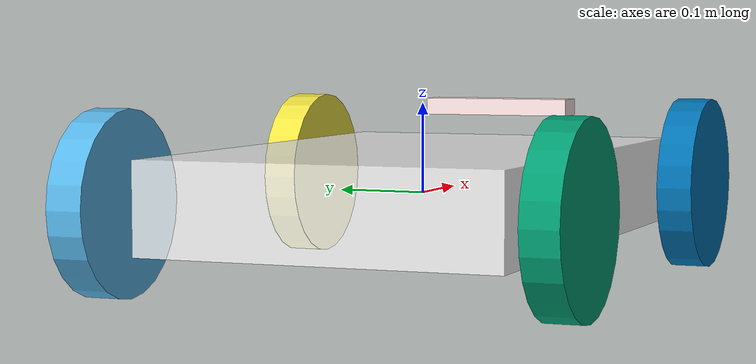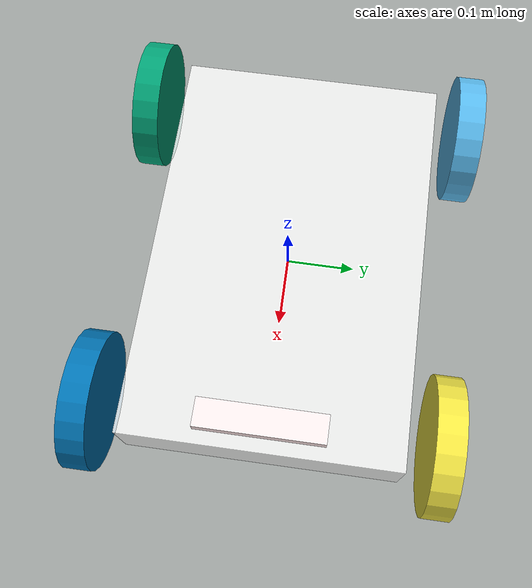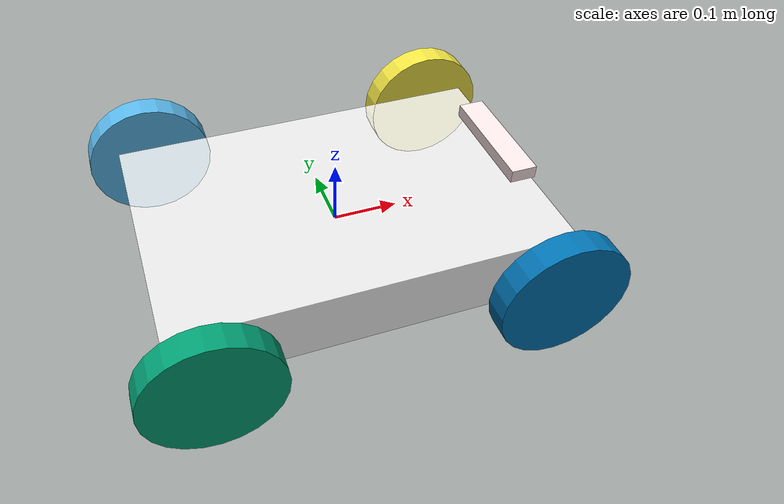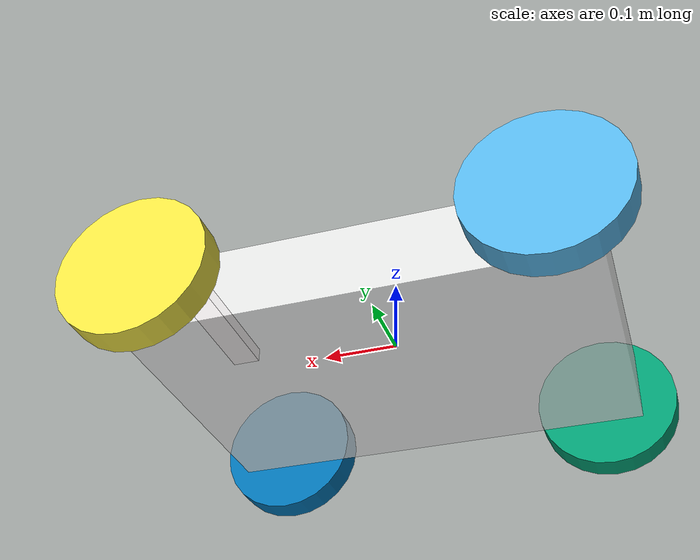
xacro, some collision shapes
<robot xmlns:xacro="http://www.ros.org/wiki/xacro"  name="mobile_robot">

 <xacro:macro name="wheel" params="name x y">
  <link name="${name}">
    <visual>
      <origin xyz="0 0 0" rpy="${pi/2} 0 0"/>
      <geometry>
        <cylinder length="0.04" radius="0.1"/>
      </geometry>
    </visual>
    <collision>
      <origin xyz="0 0 0" rpy="${pi/2} 0 0"/>
      <geometry>
         <cylinder length="0.04" radius="0.1"/>
      </geometry>
    </collision>
	<xacro:default_inertial mass="0.6"/>
  </link>
  <joint name="base_link_${name}" type="continuous">
    <origin xyz="${y*0.25} ${x*0.25} 0" rpy="0 0 0"/>
     <axis rpy="0 0 0" xyz="0 1 0"/>
    <parent link="base_link"/>
    <child link="${name}"/>
  </joint>

<gazebo reference="base_link_${name}_wheel">
  <mu1 value="200.0"/>
  <mu2 value="100.0"/>
  <kp value="10000000.0" />
  <kd value="1.0" />
  <material>Gazebo/Grey</material>
</gazebo>
<transmission name="base_link_${name}_wheel_trans">
  <type>transmission_interface/SimpleTransmission</type>
  <actuator name="base_link_${name}_wheel_motor">
    <mechanicalReduction>1</mechanicalReduction>
  </actuator>
  <joint name="base_link_${name}">
    <hardwareInterface>hardware_interface/VelocityJointInterface</hardwareInterface>
  </joint>
</transmission>
</xacro:macro>

<xacro:macro name="default_inertial" params="mass">
  <inertial>
    <mass value="${mass}" />
    <inertia ixx="1.0" ixy="0.0" ixz="0.0" iyy="1.0" iyz="0.0" izz="1.0" />
  </inertial>
</xacro:macro>

<link name="base_link">
    <visual>
      <origin xyz="0 0 0" rpy="0 0 0"/>
      <geometry>
        <box size="0.6 0.4 0.10"/>
      </geometry>
      <material name="acrylic">
        <color rgba="1 1 1 0.8"/>
      </material>
    </visual>
    <collision>
      <origin xyz="0 0 0" rpy="0 0 0"/>
      <geometry>
        <box size="0.6 0.4 0.10"/>
      </geometry>
    </collision>
	<xacro:default_inertial mass="30"/>
</link>

<xacro:wheel name="wh_left_back" x="1" y="-1"/>
<xacro:wheel name="wh_right_back" x="-1" y="-1"/>
<xacro:wheel name="wh_left_front" x="1" y="1"/>
<xacro:wheel name="wh_right_front" x="-1" y="1"/>

 <!-- =================== Kinect ==================== -->
  <link name="kinect_link">
    <visual>
      <origin xyz="-0.1 -0.045 -0.1" rpy="1.5 0 0"/>
      <geometry>
        <mesh filename="package://mobile_robot_description/meshes/HC-SR04.stl" scale="0.005 0.005  0.005"/>
      </geometry>
      <material name="kinect">
        <color rgba="1 0.9 0.9 1"/>
      </material>
    </visual>
    <collision>
      <origin xyz="0 0 0" rpy="0 0 0"/>
      <geometry>
        <box size="0.18 0.04 0.02"/>
      </geometry>
    </collision>
    <xacro:default_inertial mass="0.2"/>
  </link>

  <joint name="base_link_kinect_link" type="fixed">
    <origin xyz="0.265 0 0.087" rpy="0 0 ${pi/2}"/>
    <parent link="base_link"/>
    <child link="kinect_link"/>
  </joint>

<!-- ********************* ULTRASONIC SENSOR **********************  -->
<link name="ultrasonic_1_link">

  <xacro:default_inertial mass="0.2"/>
  <pose>0.09 -0.139 0.595 0 0 0</pose>
  <sensor name="ultrasonic_1" type="ray">
    <always_on>true</always_on>
    <visualize>false</visualize>
    <update_rate>5</update_rate>
    <ray>
      <scan>
        <horizontal>
          <samples>5</samples>
          <resolution>1.000000</resolution>
          <min_angle>-0.12</min_angle>
          <max_angle>0.12</max_angle>
        </horizontal>
        <vertical>
          <samples>5</samples>
          <resolution>1.000000</resolution>
          <min_angle>-0.01</min_angle>
          <max_angle>0.01</max_angle>
        </vertical>
      </scan>
      <range>
        <min>0.02</min>
        <max>4</max>
        <resolution>0.01</resolution>
      </range>
      <noise>
        <type>gaussian</type>
        <mean>0.0</mean>
        <stddev>0.01</stddev>
      </noise>
    </ray>

  </sensor>
</link>

  <joint name="base_ultrasonic_1_link" type="fixed">
    <origin xyz="0.265 0 0.087" rpy="0 0 ${pi/2}"/>
    <parent link="kinect_link"/>
    <child link="ultrasonic_1_link"/>
  </joint>

<gazebo>

   <plugin name="gazebo_ros_control" filename="libgazebo_ros_control.so">
     <robotNamespace>/</robotNamespace>
	<alwaysOn>true</alwaysOn>

      <updateRate>10.0</updateRate>

      <frameName>gz_kinect_link</frameName>

      <pointCloudCutoff>0.4</pointCloudCutoff>
      <hackBaseline>0.07</hackBaseline>
      <distortionK1>0.001</distortionK1>
      <distortionK2>0.001</distortionK2>
      <distortionK3>0.001</distortionK3>
      <distortionT1>0.001</distortionT1>
      <distortionT2>0.001</distortionT2>
      <CxPrime>0</CxPrime>
      <Cx>0</Cx>
      <Cy>0</Cy>
      <focalLength>0</focalLength>
   </plugin>

      <plugin name="ultrasonic_sensor_1" filename="libgazebo_ros_ray_sensor.so">
	      <ros>
		<remapping>~/out:=ultrasonic_sensor_1</remapping>
	      </ros>
	      <output_type>sensor_msgs/Range</output_type>
	      <radiation_type>ultrasound</radiation_type>
	      <frame_name>ultrasonic_1_link</frame_name>
      </plugin>

 </gazebo>

<plugin name="differential_drive_controller" filename="libgazebo_ros_diff_drive.so">
  <alwaysOn>true</alwaysOn>
  <updateRate>20</updateRate>
  <leftJoint>base_link_wh_left_back</leftJoint>
  <rightJoint>base_link_wh_right_back</rightJoint>
  <wheelSeparation>0.5</wheelSeparation>
  <wheelDiameter>0.1</wheelDiameter>
  <torque>20</torque>
 <commandTopic>/cmd_vel</commandTopic>
 <odometryTopic>/mobile_robot/odom</odometryTopic>
 <odometryFrame>odom</odometryFrame>
 <robotBaseFrame>base_link</robotBaseFrame>
</plugin>
</robot>
